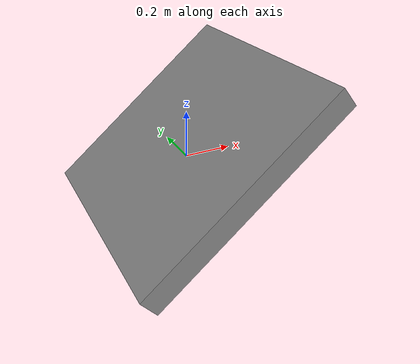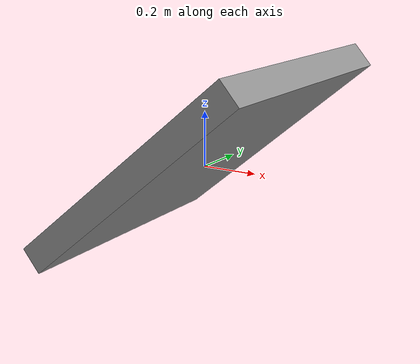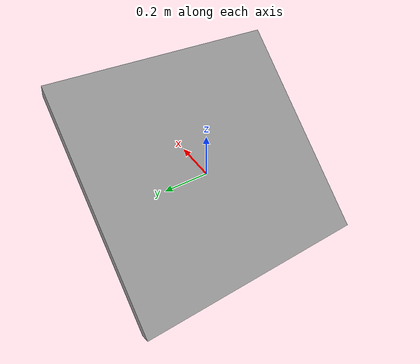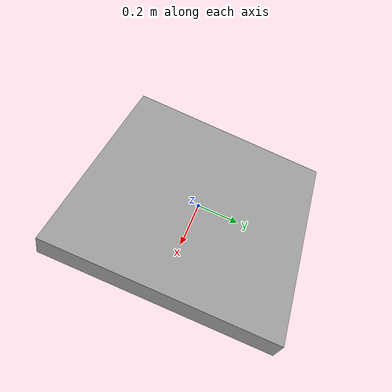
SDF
<?xml version='1.0'?>
<sdf version='1.6'>
  <model name='inclined'>
    <link name='link'>
      <!-- Adjusted pose for inclination: X Y Z Roll Pitch Yaw, where Pitch is used to create the inclination -->
      <pose>0 0 0.05 0 -0.34906585 0</pose> <!-- Reversed tilt of approx. -20 degrees -->
      <inertial>
        <pose>0 0 0 0 -0 0</pose>
        <mass>10</mass>
        <inertia>
          <ixx>0.166667</ixx>
          <ixy>0</ixy>
          <ixz>0</ixz>
          <iyy>0.166667</iyy>
          <iyz>0</iyz>
          <izz>0.166667</izz>
        </inertia>
      </inertial>
      <self_collide>0</self_collide>
      <enable_wind>0</enable_wind>
      <kinematic>0</kinematic>
      <visual name='visual'>
        <!-- Adjusted visual to match the inclined pose -->
        <pose>0 0 0 0 -0.34906585 0</pose>
        <geometry>
          <box>
            <!-- Optionally adjust size to more closely resemble a plane -->
            <size>1 1 0.1</size>
          </box>
        </geometry>
        <material>
          <script>
            <name>Gazebo/Grey</name>
            <uri>file://media/materials/scripts/gazebo.material</uri>
          </script>
          <shader type='pixel'/>
        </material>
        <!-- Transparency and shadow casting remain unchanged -->
        <transparency>0</transparency>
        <cast_shadows>1</cast_shadows>
      </visual>
      <collision name='collision'>
        <!-- Collision pose matches visual for consistency -->
        <pose>0 0 0 0 -0.34906585 0</pose>
        <geometry>
          <box>
            <!-- Matching size for collision detection -->
            <size>1 1 0.1</size>
          </box>
        </geometry>
        <!-- Surface properties (friction, bounce, contact) remain unchanged -->
        <surface>
          <friction>
            <ode>
              <mu>1</mu>
              <mu2>1</mu2>
              <fdir1>0 0 0</fdir1>
              <slip1>0</slip1>
              <slip2>0</slip2>
            </ode>
            <torsional>
              <coefficient>1</coefficient>
              <patch_radius>0</patch_radius>
              <surface_radius>0</surface_radius>
              <use_patch_radius>1</use_patch_radius>
              <ode>
                <slip>0</slip>
              </ode>
            </torsional>
          </friction>
          <bounce>
            <restitution_coefficient>0</restitution_coefficient>
            <threshold>1e+06</threshold>
          </bounce>
          <contact>
            <collide_without_contact>0</collide_without_contact>
            <collide_without_contact_bitmask>1</collide_without_contact_bitmask>
            <collide_bitmask>1</collide_bitmask>
            <ode>
              <soft_cfm>0</soft_cfm>
              <soft_erp>0.2</soft_erp>
              <kp>1e+13</kp>
              <kd>1</kd>
              <max_vel>0.01</max_vel>
              <min_depth>0</min_depth>
            </ode>
            <bullet>
              <split_impulse>1</split_impulse>
              <split_impulse_penetration_threshold>-0.01</split_impulse_penetration_threshold>
              <soft_cfm>0</soft_cfm>
              <soft_erp>0.2</soft_erp>
              <kp>1e+13</kp>
              <kd>1</kd>
            </bullet>
          </contact>
        </surface>
      </collision>
    </link>
    <static>1</static>
    <allow_auto_disable>1</allow_auto_disable>
  </model>
</sdf>
